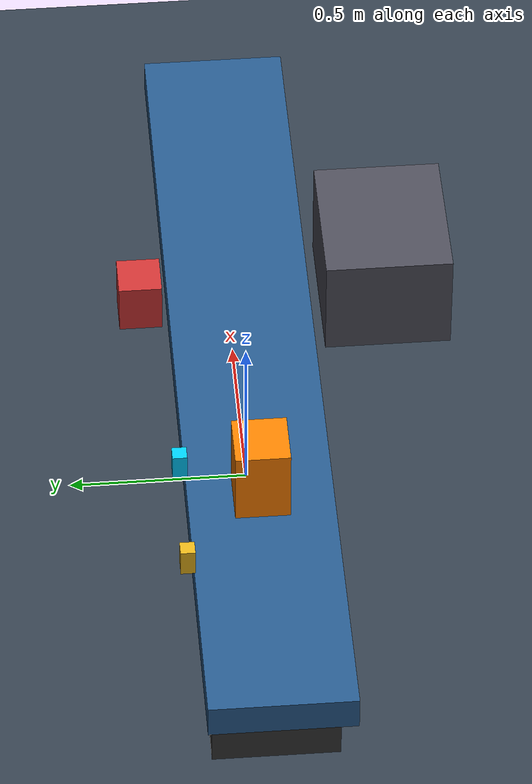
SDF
<?xml version="1.0" ?>
<sdf version="1.8">
  <world name="conveyor_sorting_world">
    <physics name="1ms" type="ignored">
      <max_step_size>0.001</max_step_size>
      <real_time_factor>1.0</real_time_factor>
    </physics>

    <!-- Gazebo Sim Core Plugins -->
    <plugin
      filename="gz-sim-physics-system"
      name="gz::sim::systems::Physics">
    </plugin>
    <plugin
      filename="gz-sim-user-commands-system"
      name="gz::sim::systems::UserCommands">
    </plugin>
    <plugin
      filename="gz-sim-scene-broadcaster-system"
      name="gz::sim::systems::SceneBroadcaster">
    </plugin>
    <plugin
      filename="gz-sim-sensors-system"
      name="gz::sim::systems::Sensors">
      <render_engine>ogre2</render_engine>
    </plugin>

    <!-- Sun Light Source -->
    <light type="directional" name="sun">
      <cast_shadows>true</cast_shadows>
      <pose>0 0 10 0 0 0</pose>
      <diffuse>0.9 0.9 0.9 1</diffuse>
      <specular>0.3 0.3 0.3 1</specular>
      <attenuation>
        <range>1000</range>
        <constant>0.9</constant>
        <linear>0.01</linear>
        <quadratic>0.001</quadratic>
      </attenuation>
      <direction>-0.5 0.1 -0.9</direction>
    </light>

    <!-- Ground Plane -->
    <model name="ground_plane">
      <static>true</static>
      <link name="link">
        <collision name="collision">
          <geometry>
            <plane>
              <normal>0 0 1</normal>
              <size>100 100</size>
            </plane>
          </geometry>
        </collision>
        <visual name="visual">
          <geometry>
            <plane>
              <normal>0 0 1</normal>
              <size>100 100</size>
            </plane>
          </geometry>
          <material>
            <ambient>0.2 0.25 0.3 1</ambient>
            <diffuse>0.2 0.25 0.3 1</diffuse>
            <specular>0.1 0.1 0.1 1</specular>
          </material>
        </visual>
      </link>
    </model>

    <!-- Focused Camera GUI Setup -->
    <gui fullscreen="0">
      <camera name="user_camera">
        <pose>0.1 -1.6 1.15 0 0.45 1.57</pose>
        <view_controller>orbit</view_controller>
      </camera>
    </gui>

    <!-- Conveyor Belt Assembly -->
    <model name="conveyor_belt">
      <static>true</static>
      <pose>0 0 0.4 0 0 0</pose>
      <!-- Main Frame -->
      <link name="conveyor_base">
        <visual name="visual_frame">
          <geometry>
            <box>
              <size>2.5 0.4 0.1</size>
            </box>
          </geometry>
          <material>
            <ambient>0.15 0.35 0.55 1</ambient>
            <diffuse>0.15 0.35 0.55 1</diffuse>
          </material>
        </visual>
        <collision name="collision_frame">
          <geometry>
            <box>
              <size>2.5 0.4 0.1</size>
            </box>
          </geometry>
        </collision>
      </link>

      <!-- Conveyor Legs -->
      <link name="leg1">
        <pose>-1.0 0 -0.2 0 0 0</pose>
        <visual name="v_leg1">
          <geometry><box><size>0.08 0.35 0.4</size></box></geometry>
          <material><ambient>0.2 0.2 0.2 1</ambient></material>
        </visual>
      </link>
      <link name="leg2">
        <pose>1.0 0 -0.2 0 0 0</pose>
        <visual name="v_leg2">
          <geometry><box><size>0.08 0.35 0.4</size></box></geometry>
          <material><ambient>0.2 0.2 0.2 1</ambient></material>
        </visual>
      </link>

      <!-- Optical Proximity Sensor (%I0.1) -->
      <link name="sensor_prox_link">
        <pose>-0.8 0.22 0.15 0 0 0</pose>
        <visual name="sensor_prox_vis">
          <geometry><box><size>0.04 0.04 0.08</size></box></geometry>
          <material><ambient>0.9 0.7 0.1 1</ambient></material>
        </visual>
      </link>

      <!-- Height Optical Sensor (%I0.4) -->
      <link name="sensor_tall_link">
        <pose>-0.5 0.22 0.2 0 0 0</pose>
        <visual name="sensor_tall_vis">
          <geometry><box><size>0.04 0.04 0.08</size></box></geometry>
          <material><ambient>0.0 0.8 1.0 1</ambient></material>
        </visual>
        <sensor name="height_laser" type="gpu_ray">
          <pose>0 0 0 0 0 -1.57</pose>
          <ray>
            <scan><horizontal><samples>1</samples><resolution>1</resolution><min_angle>0</min_angle><max_angle>0</max_angle></horizontal></scan>
            <range><min>0.05</min><max>0.5</max></range>
          </ray>
          <always_on>true</always_on>
          <update_rate>50</update_rate>
          <visualize>true</visualize>
        </sensor>
      </link>

      <!-- Pneumatic Reject Pusher Mount (%Q1.1) -->
      <link name="pusher_mount">
        <pose>0.25 0.28 0.1 0 0 0</pose>
        <visual name="pusher_mount_vis">
          <geometry><box><size>0.12 0.12 0.15</size></box></geometry>
          <material><ambient>0.8 0.2 0.2 1</ambient></material>
        </visual>
      </link>

      <!-- Reject Bin -->
      <link name="reject_bin">
        <pose>0.25 -0.4 0.2 0 0 0</pose>
        <visual name="bin_vis">
          <geometry><box><size>0.4 0.35 0.3</size></box></geometry>
          <material><ambient>0.3 0.3 0.35 1</ambient></material>
        </visual>
      </link>
    </model>

    <!-- Tall Box Workpiece (Item to be rejected) -->
    <model name="tall_box">
      <pose>-0.5 0 0.55 0 0 0</pose>
      <link name="link">
        <inertial>
          <mass>0.5</mass>
          <inertia>
            <ixx>0.005</ixx><ixy>0</ixy><ixz>0</ixz>
            <iyy>0.005</iyy><iyz>0</iyz>
            <izz>0.005</izz>
          </inertia>
        </inertial>
        <visual name="visual">
          <geometry><box><size>0.15 0.15 0.25</size></box></geometry>
          <material>
            <ambient>1.0 0.5 0.0 1</ambient>
            <diffuse>1.0 0.5 0.0 1</diffuse>
          </material>
        </visual>
        <collision name="collision">
          <geometry><box><size>0.15 0.15 0.25</size></box></geometry>
        </collision>
      </link>
    </model>

  </world>
</sdf>
